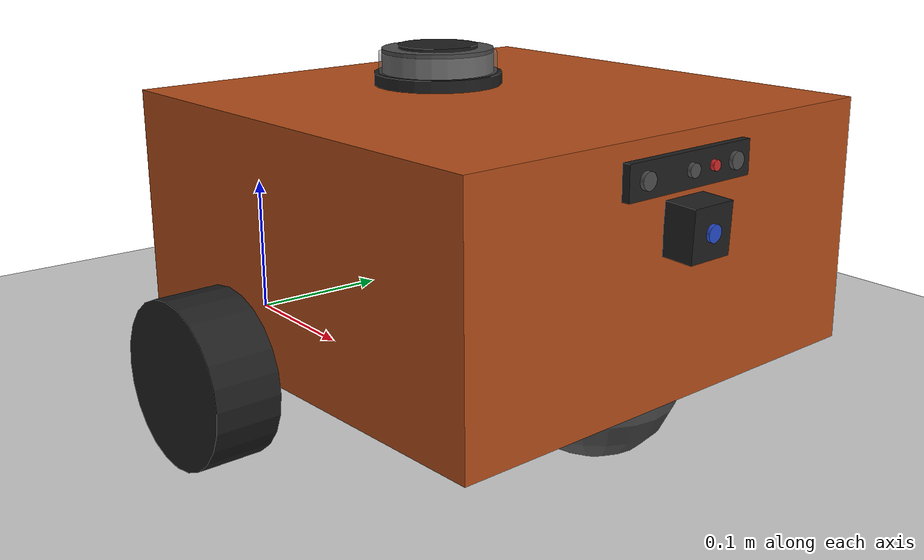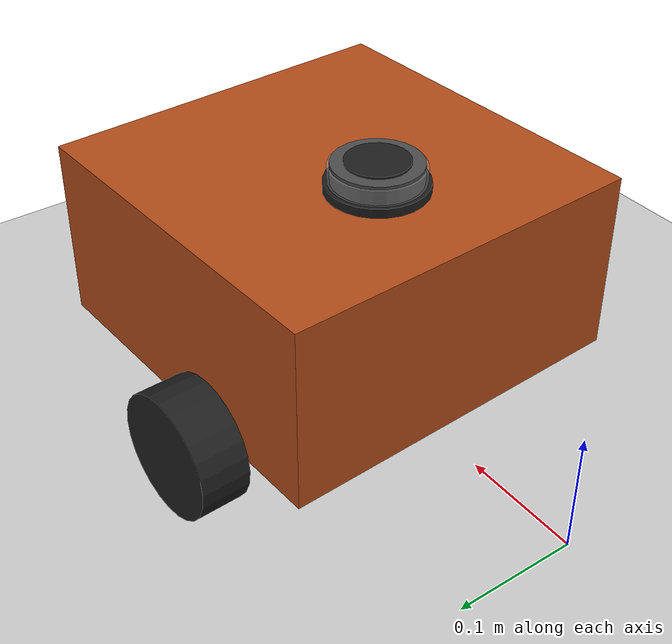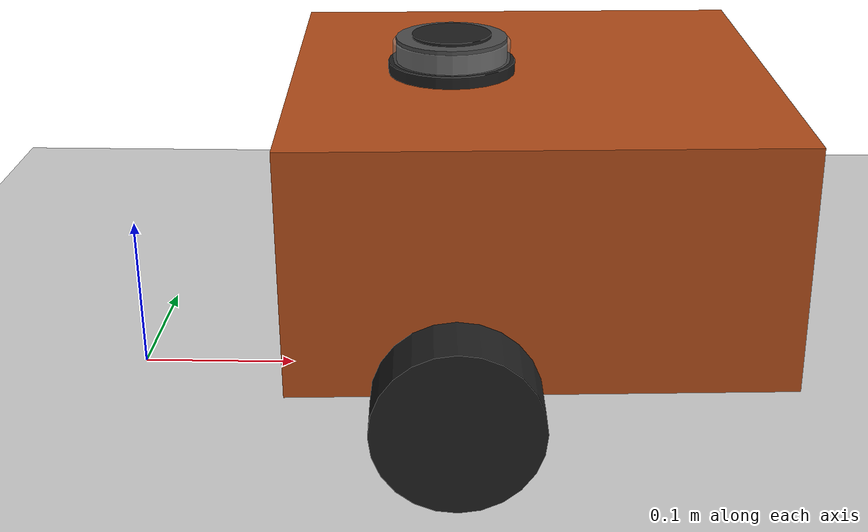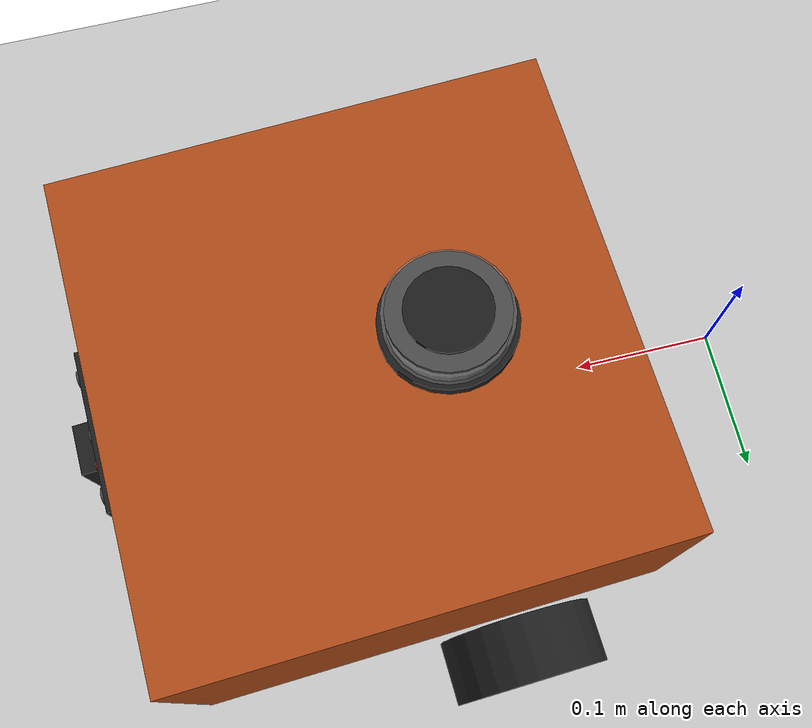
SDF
<sdf version="1.7">
 <world name="default">
  <model name="ground_plane">
   <static>1</static>
   <link name="link">
    <collision name="collision">
     <geometry><plane><normal>0 0 1</normal><size>100 100</size></plane></geometry>
     <surface>
      <contact><collide_bitmask>65535</collide_bitmask></contact>
      <friction><ode><mu>100</mu><mu2>50</mu2></ode></friction>
     </surface>
    </collision>
    <visual name="visual">
     <cast_shadows>0</cast_shadows>
     <geometry><plane><normal>0 0 1</normal><size>100 100</size></plane></geometry>
     <material>
      <script><uri>file://media/materials/scripts/gazebo.material</uri><name>Gazebo/Grey</name></script>
     </material>
    </visual>
   </link>
  </model>
  <model name="mob_rob">
   <link name="base_link">
    <inertial>
     <pose>0.075096 0 0.07601 0 -0 0</pose>
     <mass>0.52</mass>
     <inertia>
      <ixx>0.00412495</ixx>
      <ixy>0</ixy>
      <ixz>0.000662634</ixz>
      <iyy>0.0059028</iyy>
      <iyz>0</iyz>
      <izz>0.0064726</izz>
     </inertia>
    </inertial>
    <collision name="base_link_fixed_joint_lump__chassis_collision">
     <pose>0.05 0 0.075 0 -0 0</pose>
     <geometry><box><size>0.3 0.3 0.15</size></box></geometry>
    </collision>
    <collision name="base_link_fixed_joint_lump__camera_body_collision_1">
     <pose>0.21 0 0.1 0 0.05 0</pose>
     <geometry><box><size>0.02 0.03 0.03</size></box></geometry>
    </collision>
    <collision name="base_link_fixed_joint_lump__caster_wheel_collision_2">
     <pose>0.14 0 0 0 -0 0</pose>
     <geometry><sphere><radius>0.05</radius></sphere></geometry>
     <surface><friction><ode><mu>0.001</mu><mu2>0.001</mu2></ode></friction></surface>
    </collision>
    <collision name="base_link_fixed_joint_lump__depth_camera_housing_collision_3">
     <pose>0.195 0 0.13 0 -0 0</pose>
     <geometry><box><size>0.02 0.095 0.02</size></box></geometry>
    </collision>
    <collision name="base_link_fixed_joint_lump__lidar_base_collision_4">
     <pose>0 0 0.15 0 -0 0</pose>
     <geometry><cylinder><length>0.015</length><radius>0.04</radius></cylinder></geometry>
    </collision>
    <collision name="base_link_fixed_joint_lump__laser_frame_collision_5">
     <pose>0 0 0.1625 0 -0 0</pose>
     <geometry><cylinder><length>0.02</length><radius>0.035</radius></cylinder></geometry>
    </collision>
    <visual name="base_link_fixed_joint_lump__chassis_visual">
     <pose>0.05 0 0.075 0 -0 0</pose>
     <geometry><box><size>0.3 0.3 0.15</size></box></geometry>
     <material>
      <ambient>0.5 0.2 0.05 1</ambient>
      <diffuse>0.7 0.3 0.1 1</diffuse>
      <specular>0.8 0.8 0.8 1</specular>
      <emissive>0 0 0 0</emissive>
     </material>
    </visual>
    <visual name="base_link_fixed_joint_lump__camera_body_visual_1">
     <pose>0.21 0 0.1 0 0.05 0</pose>
     <geometry><box><size>0.02 0.03 0.03</size></box></geometry>
     <material>
      <script><name>Gazebo/Black</name><uri>file://media/materials/scripts/gazebo.material</uri></script>
     </material>
    </visual>
    <visual name="base_link_fixed_joint_lump__camera_lens_visual_visual_2">
     <pose>0.220986 0 0.09945 3.14159 1.52079 3.14159</pose>
     <geometry><cylinder><length>0.002</length><radius>0.005</radius></cylinder></geometry>
     <material>
      <script><name>Gazebo/Blue</name><uri>file://media/materials/scripts/gazebo.material</uri></script>
     </material>
    </visual>
    <visual name="base_link_fixed_joint_lump__caster_wheel_visual_3">
     <pose>0.14 0 0 0 -0 0</pose>
     <geometry><sphere><radius>0.05</radius></sphere></geometry>
     <material>
      <script><name>Gazebo/DarkGrey</name><uri>file://media/materials/scripts/gazebo.material</uri></script>
     </material>
    </visual>
    <visual name="base_link_fixed_joint_lump__depth_camera_housing_visual_4">
     <pose>0.195 0 0.13 0 -0 0</pose>
     <geometry><box><size>0.02 0.095 0.02</size></box></geometry>
     <material>
      <script><name>Gazebo/Black</name><uri>file://media/materials/scripts/gazebo.material</uri></script>
     </material>
    </visual>
    <visual name="base_link_fixed_joint_lump__depth_left_ir_visual_5">
     <pose>0.206 0.035 0.13 3.14159 1.57079 3.14159</pose>
     <geometry><cylinder><length>0.003</length><radius>0.005</radius></cylinder></geometry>
     <material>
      <script><name>Gazebo/DarkGrey</name><uri>file://media/materials/scripts/gazebo.material</uri></script>
     </material>
    </visual>
    <visual name="base_link_fixed_joint_lump__depth_projector_visual_6">
     <pose>0.206 0.0175 0.13 3.14159 1.57079 3.14159</pose>
     <geometry><cylinder><length>0.003</length><radius>0.003</radius></cylinder></geometry>
     <material>
      <script><name>Gazebo/RedGlow</name><uri>file://media/materials/scripts/gazebo.material</uri></script>
     </material>
    </visual>
    <visual name="base_link_fixed_joint_lump__depth_rgb_visual_7">
     <pose>0.206 0 0.13 3.14159 1.57079 3.14159</pose>
     <geometry><cylinder><length>0.003</length><radius>0.004</radius></cylinder></geometry>
     <material>
      <script><name>Gazebo/DarkGrey</name><uri>file://media/materials/scripts/gazebo.material</uri></script>
     </material>
    </visual>
    <visual name="base_link_fixed_joint_lump__depth_right_ir_visual_8">
     <pose>0.206 -0.035 0.13 3.14159 1.57079 3.14159</pose>
     <geometry><cylinder><length>0.003</length><radius>0.005</radius></cylinder></geometry>
     <material>
      <script><name>Gazebo/DarkGrey</name><uri>file://media/materials/scripts/gazebo.material</uri></script>
     </material>
    </visual>
    <visual name="base_link_fixed_joint_lump__lidar_base_visual_9">
     <pose>0 0 0.15 0 -0 0</pose>
     <geometry><cylinder><length>0.015</length><radius>0.04</radius></cylinder></geometry>
     <material>
      <script><name>Gazebo/Black</name><uri>file://media/materials/scripts/gazebo.material</uri></script>
     </material>
    </visual>
    <visual name="base_link_fixed_joint_lump__laser_frame_visual_10">
     <pose>0 0 0.1625 0 -0 0</pose>
     <geometry><cylinder><length>0.02</length><radius>0.035</radius></cylinder></geometry>
     <material>
      <script><name>Gazebo/DarkGrey</name><uri>file://media/materials/scripts/gazebo.material</uri></script>
     </material>
    </visual>
    <visual name="base_link_fixed_joint_lump__lidar_lens_visual_11">
     <pose>0 0 0.1625 0 -0 0</pose>
     <geometry><cylinder><length>0.015</length><radius>0.037</radius></cylinder></geometry>
     <material>
      <script><name>Gazebo/GreyTransparent</name><uri>file://media/materials/scripts/gazebo.material</uri></script>
     </material>
    </visual>
    <visual name="base_link_fixed_joint_lump__lidar_top_visual_12">
     <pose>0 0 0.1735 0 -0 0</pose>
     <geometry><cylinder><length>0.002</length><radius>0.025</radius></cylinder></geometry>
     <material>
      <script><name>Gazebo/Black</name><uri>file://media/materials/scripts/gazebo.material</uri></script>
     </material>
    </visual>
    <sensor name="camera" type="camera">
     <always_on>1</always_on>
     <visualize>1</visualize>
     <update_rate>30</update_rate>
     <camera>
      <horizontal_fov>1.396</horizontal_fov>
      <image><format>R8G8B8</format><width>640</width><height>480</height></image>
      <clip><near>0.05</near><far>100</far></clip>
     </camera>
     <plugin name="camera_controller" filename="libgazebo_ros_camera.so">
      <ros>
       <namespace>/</namespace>
       <remapping>image_raw:=camera/image_raw</remapping>
       <remapping>camera_info:=camera/camera_info</remapping>
      </ros>
      <camera_name>camera</camera_name>
      <frame_name>camera_link_optical</frame_name>
     </plugin>
     <pose>0.229975 0 0.099 0 0.05 0</pose>
    </sensor>
    <sensor name="depth_camera" type="depth">
     <visualize>0</visualize>
     <update_rate>10</update_rate>
     <camera>
      <horizontal_fov>1.089</horizontal_fov>
      <image><format>B8G8R8</format><width>640</width><height>480</height></image>
      <clip><near>0.05</near><far>8</far></clip>
     </camera>
     <plugin name="depth_camera_controller" filename="libgazebo_ros_camera.so">
      <frame_name>depth_camera_link_optical</frame_name>
      <min_depth>0.1</min_depth>
      <max_depth>100.0</max_depth>
     </plugin>
     <pose>0.205 0 0.13 0 -0 0</pose>
    </sensor>
    <sensor name="laser" type="ray">
     <visualize>0</visualize>
     <update_rate>10</update_rate>
     <ray>
      <scan>
       <horizontal>
        <samples>360</samples>
        <resolution>1</resolution>
        <min_angle>-3.14</min_angle>
        <max_angle>3.14</max_angle>
       </horizontal>
       <vertical><samples>1</samples><min_angle>0</min_angle><max_angle>0</max_angle></vertical>
      </scan>
      <range><min>0.3</min><max>12</max></range>
     </ray>
     <plugin name="laser_controller" filename="libgazebo_ros_ray_sensor.so">
      <ros><argument>~/out:=scan</argument></ros>
      <output_type>sensor_msgs/LaserScan</output_type>
      <frame_name>laser_frame</frame_name>
     </plugin>
     <pose>0 0 0.1625 0 -0 0</pose>
    </sensor>
   </link>
   <joint name="left_wheel_joint" type="revolute">
    <pose relative_to="base_link">0 0.175 0 -1.5708 0 0</pose>
    <parent>base_link</parent>
    <child>left_wheel</child>
    <axis>
     <xyz>0 0 1</xyz>
     <limit><lower>-1e+16</lower><upper>1e+16</upper></limit>
     <dynamics><spring_reference>0</spring_reference><spring_stiffness>0</spring_stiffness></dynamics>
    </axis>
   </joint>
   <link name="left_wheel">
    <pose relative_to="left_wheel_joint">0 0 0 0 -0 0</pose>
    <inertial>
     <mass>0.1</mass>
     <inertia>
      <ixx>7.58333e-05</ixx>
      <ixy>0</ixy>
      <ixz>0</ixz>
      <iyy>7.58333e-05</iyy>
      <iyz>0</iyz>
      <izz>0.000125</izz>
     </inertia>
    </inertial>
    <collision name="left_wheel_collision"><geometry><sphere><radius>0.05</radius></sphere></geometry></collision>
    <visual name="left_wheel_visual">
     <geometry><cylinder><length>0.04</length><radius>0.05</radius></cylinder></geometry>
     <material>
      <script><name>Gazebo/FlatBlack</name><uri>file://media/materials/scripts/gazebo.material</uri></script>
     </material>
    </visual>
   </link>
   <joint name="right_wheel_joint" type="revolute">
    <pose relative_to="base_link">0 -0.175 0 1.5708 -0 0</pose>
    <parent>base_link</parent>
    <child>right_wheel</child>
    <axis>
     <xyz>0 0 -1</xyz>
     <limit><lower>-1e+16</lower><upper>1e+16</upper></limit>
     <dynamics><spring_reference>0</spring_reference><spring_stiffness>0</spring_stiffness></dynamics>
    </axis>
   </joint>
   <link name="right_wheel">
    <pose relative_to="right_wheel_joint">0 0 0 0 -0 0</pose>
    <inertial>
     <mass>0.1</mass>
     <inertia>
      <ixx>7.58333e-05</ixx>
      <ixy>0</ixy>
      <ixz>0</ixz>
      <iyy>7.58333e-05</iyy>
      <iyz>0</iyz>
      <izz>0.000125</izz>
     </inertia>
    </inertial>
    <collision name="right_wheel_collision">
     <geometry><sphere><radius>0.05</radius></sphere></geometry>
    </collision>
    <visual name="right_wheel_visual">
     <geometry><cylinder><length>0.04</length><radius>0.05</radius></cylinder></geometry>
     <material>
      <script><name>Gazebo/FlatBlack</name><uri>file://media/materials/scripts/gazebo.material</uri></script>
     </material>
    </visual>
   </link>
   <static>0</static>
   <plugin name="gazebo_ros2_control" filename="libgazebo_ros2_control.so">
    <parameters>/home/arunmekkad/Files/ROS2/ros2_ws/install/mob_rob/share/mob_rob/config/ros2_controllers.yaml</parameters>
   </plugin>
   <pose>0.207327 0.017995 0.049999 2e-06 -5e-06 0.04942</pose>
  </model>
 </world>
</sdf>
